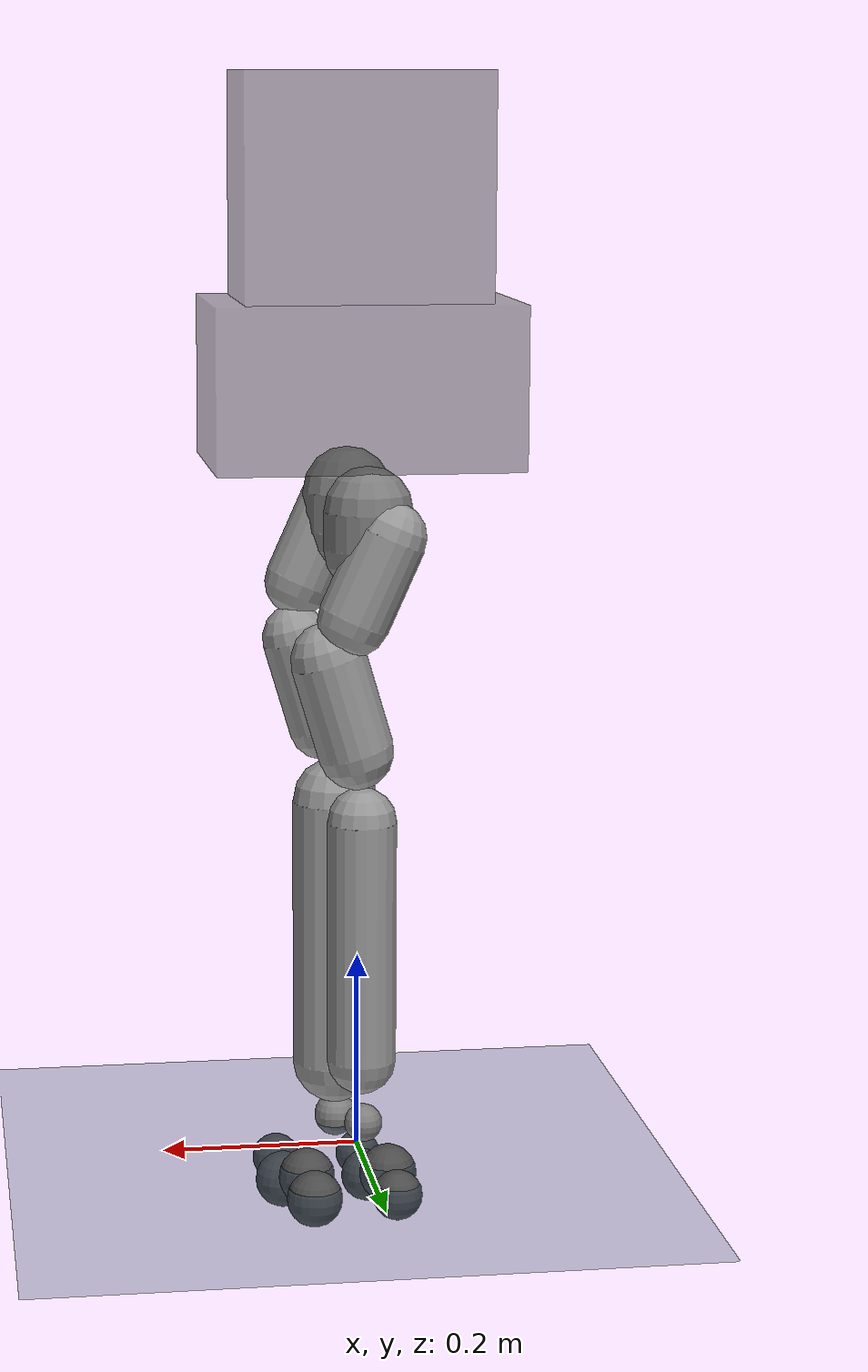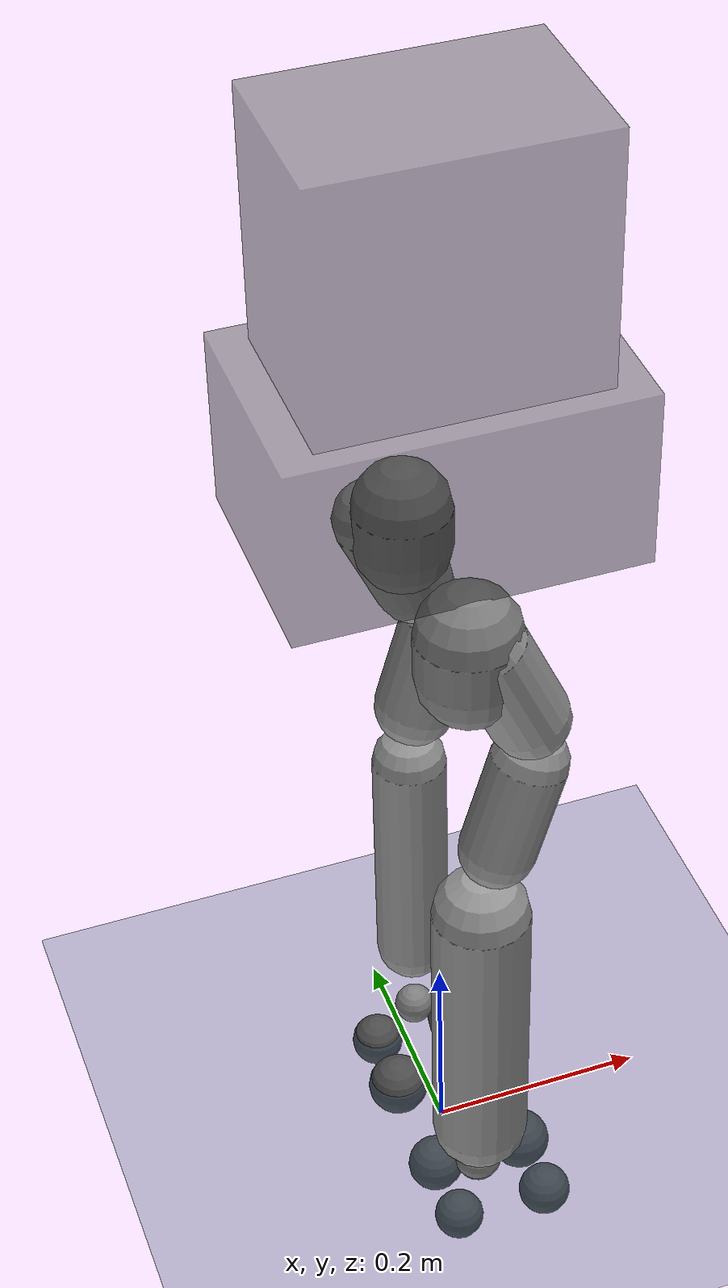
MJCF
<?xml version='1.0' encoding='UTF-8'?>
<mujoco model="g1_12dof">
  <compiler angle="degree" />
  <option timestep="0.002" integrator="RK4" />
  <default>
    <joint damping="2.03" armature="0.01" frictionloss="0.162" limited="true" />
    <geom conaffinity="1" condim="3" contype="1" friction="1.13 0.21 0.11" />
    <motor ctrllimited="true" ctrlrange="-1 1" />
  </default>
  <asset>
    <texture type="skybox" builtin="gradient" rgb1="0.3 0.5 0.7" rgb2="0.0 0.0 0.0" width="512" height="512" />
    <texture name="texplane" type="2d" builtin="checker" rgb1="0.2 0.3 0.4" rgb2="0.1 0.2 0.3" width="512" height="512" mark="cross" markrgb="1 1 1" />
    <material name="matplane" reflectance="0.3" texture="texplane" texrepeat="1 1" texuniform="true" />
  </asset>
  <worldbody>
    <light cutoff="100" diffuse="1 1 1" dir="-1 0 -1.5" directional="true" exponent="1" pos="0 0 1.3" specular="0.1 0.1 0.1" />
    <geom name="floor" pos="0 0 0" size="40 40 0.125" type="plane" material="matplane" condim="3" />
    <body name="pelvis" pos="0.001743 0.013119 0.788898">
      <inertial pos="0.0144905 0.000151462 0.144068" quat="0.999881 -0.000505543 -0.0154276 0.000328408" mass="15.228389" diaginertia="0.45110172 0.37060459 0.17282835" />
      <freejoint name="root" />
      <geom name="pelvis_geom" type="box" size="0.15 0.1 0.08" pos="0 0 0" rgba="0.3 0.3 0.3 0.5" />
      <geom name="torso_geom" type="box" size="0.12 0.08 0.15" pos="0 0 0.15" rgba="0.3 0.3 0.3 0.5" />
      <body name="left_hip_pitch_link" pos="0.002021 0.053126 -0.107950">
        <inertial pos="0.002741 0.047791 -0.02606" quat="0.954862 0.293964 0.0302556 0.030122" mass="1.058667" diaginertia="0.00131266 0.00110949 0.00084040" />
        <joint name="left_hip_pitch_joint" pos="0 0 0" axis="0 1 0" range="-140.7 167.8" damping="2.04" armature="0.01" frictionloss="0.090" />
        <geom name="left_hip_pitch_geom" type="capsule" fromto="0.000000 0.027581 -0.009194 0.000000 0.027581 -0.045968" size="0.043730" rgba="0.5 0.5 0.5 1" />
        <body name="left_hip_roll_link" pos="-0.018179 0.049865 -0.032091" quat="0.996179 0 -0.0873386 0">
          <inertial pos="0.029812 -0.001045 -0.087934" quat="0.977808 -1.97119e-05 0.205576 -0.0403793" mass="1.877235" diaginertia="0.00337870 0.00319562 0.00197108" />
          <joint name="left_hip_roll_joint" pos="0 0 0" axis="1 0 0" range="-28.2 174.0" damping="1.56" armature="0.01" frictionloss="0.092" />
          <geom name="left_hip_roll_geom" type="capsule" fromto="0.000000 0.000000 0.000000 0.021124 0.000000 -0.084497" size="0.035530" rgba="0.6 0.6 0.6 1" />
          <body name="left_hip_yaw_link" pos="0.036828 -0.009731 -0.128131">
            <inertial pos="-0.057709 -0.010981 -0.15078" quat="0.600598 0.15832 0.223482 0.751181" mass="1.871410" diaginertia="0.00880847 0.00814354 0.00181737" />
            <joint name="left_hip_yaw_joint" pos="0 0 0" axis="0 0 1" range="-159.1 158.2" damping="1.70" armature="0.01" frictionloss="0.055" />
            <geom name="left_hip_yaw_geom" type="capsule" fromto="0.000000 0.000000 0.000000 -0.042542 0.000000 -0.085085" size="0.037240" rgba="0.6 0.6 0.6 1" />
            <body name="left_knee_link" pos="-0.059954 0.004111 -0.152608" quat="0.996179 0 0.0873386 0">
              <inertial pos="0.005457 0.003964 -0.12074" quat="0.923418 -0.0327699 0.0158246 0.382067" mass="2.666794" diaginertia="0.01749044 0.01733276 0.00225090" />
              <joint name="left_knee_joint" pos="0 0 0" axis="0 1 0" range="-5.1 169.7" damping="2.27" armature="0.01" frictionloss="0.086" />
              <geom name="left_knee_geom" type="capsule" fromto="0.000000 0.000000 0.000000 0.000000 0.000000 -0.241494" size="0.034206" rgba="0.6 0.6 0.6 1" />
              <body name="left_ankle_pitch_link" pos="-0.004129 -0.014256 -0.312945">
                <inertial pos="-0.007269 0 0.011137" quat="0.603053 0.369225 0.369225 0.603053" mass="0.089326" diaginertia="0.00002429 0.00001810 0.00000889" />
                <joint name="left_ankle_pitch_joint" pos="0 0 0" axis="0 1 0" range="-46.7 26.1" damping="1.57" armature="0.005" frictionloss="0.105" />
                <geom name="left_ankle_pitch_geom" type="sphere" size="0.018964" pos="0.000000 0.000000 0.000000" rgba="0.5 0.5 0.5 1" />
                <body name="left_ankle_roll_link" pos="0.000058 -0.006079 -0.036904">
                  <inertial pos="0.026505 0 -0.016425" quat="-0.000481092 0.728482 -0.000618967 0.685065" mass="0.369966" diaginertia="0.00086224 0.00083332 0.00011221" />
                  <joint name="left_ankle_roll_joint" pos="0 0 0" axis="1 0 0" range="-16.4 18.4" damping="1.33" armature="0.005" frictionloss="0.169" />
                  <geom name="left_foot_1" type="sphere" size="0.027868" pos="0.051919 0.031151 -0.031151" rgba="0.3 0.3 0.3 1" />
                  <geom name="left_foot_2" type="sphere" size="0.028464" pos="0.051919 -0.031151 -0.031151" rgba="0.3 0.3 0.3 1" />
                  <geom name="left_foot_3" type="sphere" size="0.025005" pos="-0.031151 0.031151 -0.031151" rgba="0.3 0.3 0.3 1" />
                  <geom name="left_foot_4" type="sphere" size="0.029107" pos="-0.031151 -0.031151 -0.031151" rgba="0.3 0.3 0.3 1" />
                </body>
              </body>
            </body>
          </body>
        </body>
      </body>
      <body name="right_hip_pitch_link" pos="-0.001451 -0.058304 -0.110474">
        <inertial pos="0.002741 -0.047791 -0.02606" quat="0.954862 -0.293964 0.0302556 -0.030122" mass="0.836705" diaginertia="0.00095918 0.00081072 0.00061410" />
        <joint name="right_hip_pitch_joint" pos="0 0 0" axis="0 1 0" range="-143.8 165.1" damping="2.23" armature="0.01" frictionloss="0.235" />
        <geom name="right_hip_pitch_geom" type="capsule" fromto="0.000000 -0.029919 -0.009973 0.000000 -0.029919 -0.049866" size="0.045630" rgba="0.5 0.5 0.5 1" />
        <body name="right_hip_roll_link" pos="0.010419 -0.039834 -0.018600" quat="0.996179 0 -0.0873386 0">
          <inertial pos="0.029812 0.001045 -0.087934" quat="0.977808 1.97119e-05 0.205576 0.0403793" mass="1.047025" diaginertia="0.00155120 0.00146714 0.00090495" />
          <joint name="right_hip_roll_joint" pos="0 0 0" axis="1 0 0" range="-173.1 34.2" damping="1.40" armature="0.01" frictionloss="0.182" />
          <geom name="right_hip_roll_geom" type="capsule" fromto="0.000000 0.000000 0.000000 0.022571 0.000000 -0.090285" size="0.035433" rgba="0.6 0.6 0.6 1" />
          <body name="right_hip_yaw_link" pos="0.017422 0.008607 -0.147360">
            <inertial pos="-0.057709 0.010981 -0.15078" quat="0.751181 0.223482 0.15832 0.600598" mass="1.753944" diaginertia="0.00807910 0.00746923 0.00166688" />
            <joint name="right_hip_yaw_joint" pos="0 0 0" axis="0 0 1" range="-158.0 159.4" damping="0.97" armature="0.01" frictionloss="0.204" />
            <geom name="right_hip_yaw_geom" type="capsule" fromto="0.000000 0.000000 0.000000 -0.043868 0.000000 -0.087737" size="0.034153" rgba="0.6 0.6 0.6 1" />
            <body name="right_knee_link" pos="-0.070135 0.004050 -0.162152" quat="0.996179 0 0.0873386 0">
              <inertial pos="0.005457 -0.003964 -0.12074" quat="0.923439 0.0345276 0.0116333 -0.382012" mass="1.229459" diaginertia="0.00622571 0.00617661 0.00080162" />
              <joint name="right_knee_joint" pos="0 0 0" axis="0 1 0" range="-6.8 166.6" damping="1.13" armature="0.01" frictionloss="0.186" />
              <geom name="right_knee_geom" type="capsule" fromto="0.000000 0.000000 0.000000 0.000000 0.000000 -0.280083" size="0.044306" rgba="0.6 0.6 0.6 1" />
              <body name="right_ankle_pitch_link" pos="-0.000128 0.004378 -0.339093">
                <inertial pos="-0.007269 0 0.011137" quat="0.603053 0.369225 0.369225 0.603053" mass="0.077053" diaginertia="0.00001995 0.00001486 0.00000730" />
                <joint name="right_ankle_pitch_joint" pos="0 0 0" axis="0 1 0" range="-52.0 32.5" damping="0.62" armature="0.005" frictionloss="0.114" />
                <geom name="right_ankle_pitch_geom" type="sphere" size="0.022082" pos="0.000000 0.000000 0.000000" rgba="0.5 0.5 0.5 1" />
                <body name="right_ankle_roll_link" pos="0.006409 0.013015 -0.018841">
                  <inertial pos="0.026505 0 -0.016425" quat="0.000481092 0.728482 0.000618967 0.685065" mass="0.719077" diaginertia="0.00209144 0.00202130 0.00027218" />
                  <joint name="right_ankle_roll_joint" pos="0 0 0" axis="1 0 0" range="-14.3 14.3" damping="2.41" armature="0.005" frictionloss="0.203" />
                  <geom name="right_foot_1" type="sphere" size="0.028629" pos="0.054813 0.032888 -0.032888" rgba="0.3 0.3 0.3 1" />
                  <geom name="right_foot_2" type="sphere" size="0.024548" pos="0.054813 -0.032888 -0.032888" rgba="0.3 0.3 0.3 1" />
                  <geom name="right_foot_3" type="sphere" size="0.026477" pos="-0.032888 0.032888 -0.032888" rgba="0.3 0.3 0.3 1" />
                  <geom name="right_foot_4" type="sphere" size="0.023286" pos="-0.032888 -0.032888 -0.032888" rgba="0.3 0.3 0.3 1" />
                </body>
              </body>
            </body>
          </body>
        </body>
      </body>
    </body>
  </worldbody>
  <actuator>
    <motor name="left_hip_pitch_joint" joint="left_hip_pitch_joint" gear="96.1" />
    <motor name="left_hip_roll_joint" joint="left_hip_roll_joint" gear="111.2" />
    <motor name="left_hip_yaw_joint" joint="left_hip_yaw_joint" gear="94.3" />
    <motor name="left_knee_joint" joint="left_knee_joint" gear="101.7" />
    <motor name="left_ankle_pitch_joint" joint="left_ankle_pitch_joint" gear="64.5" />
    <motor name="left_ankle_roll_joint" joint="left_ankle_roll_joint" gear="52.8" />
    <motor name="right_hip_pitch_joint" joint="right_hip_pitch_joint" gear="78.9" />
    <motor name="right_hip_roll_joint" joint="right_hip_roll_joint" gear="87.4" />
    <motor name="right_hip_yaw_joint" joint="right_hip_yaw_joint" gear="122.2" />
    <motor name="right_knee_joint" joint="right_knee_joint" gear="169.5" />
    <motor name="right_ankle_pitch_joint" joint="right_ankle_pitch_joint" gear="49.5" />
    <motor name="right_ankle_roll_joint" joint="right_ankle_roll_joint" gear="26.3" />
  </actuator>
</mujoco>
